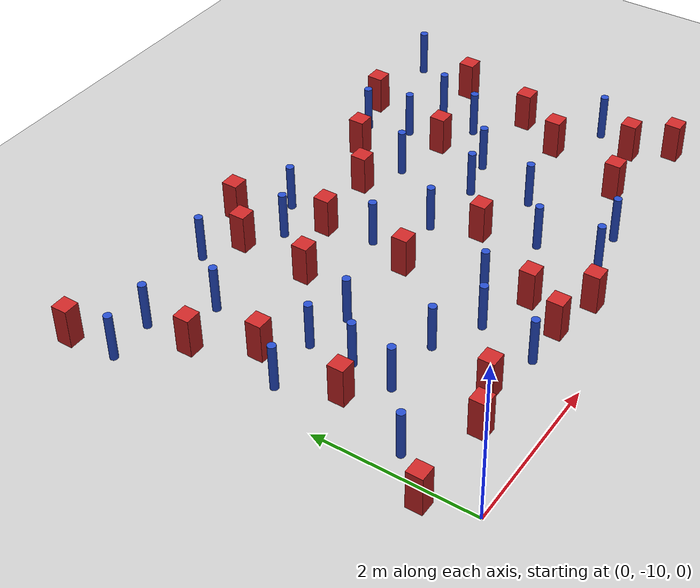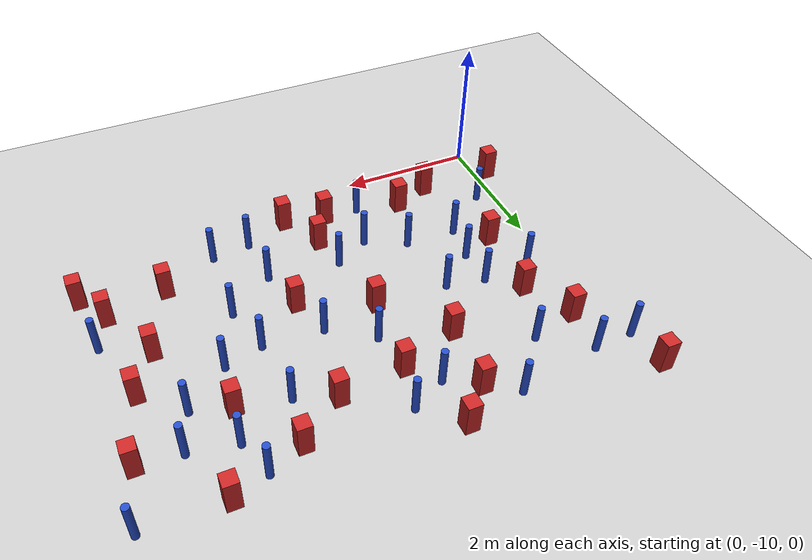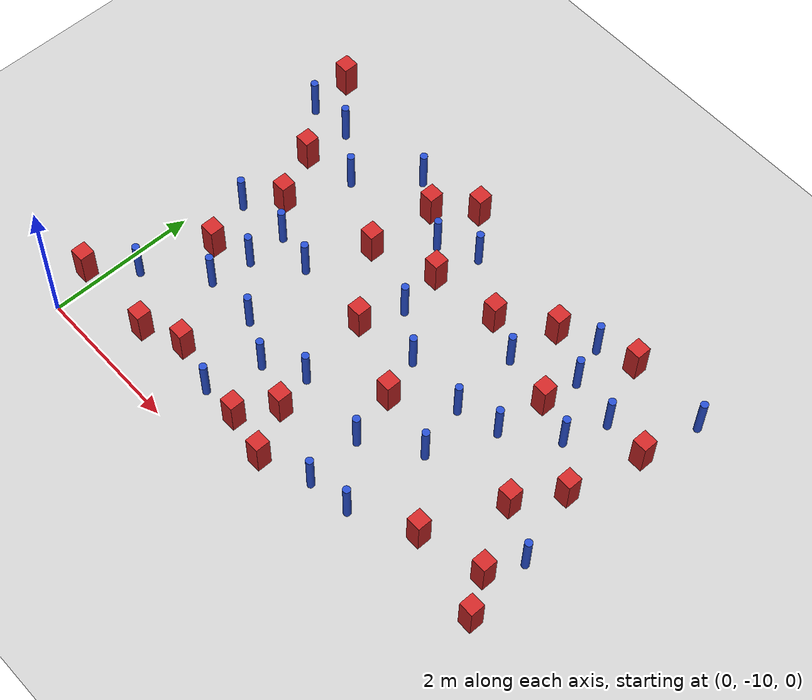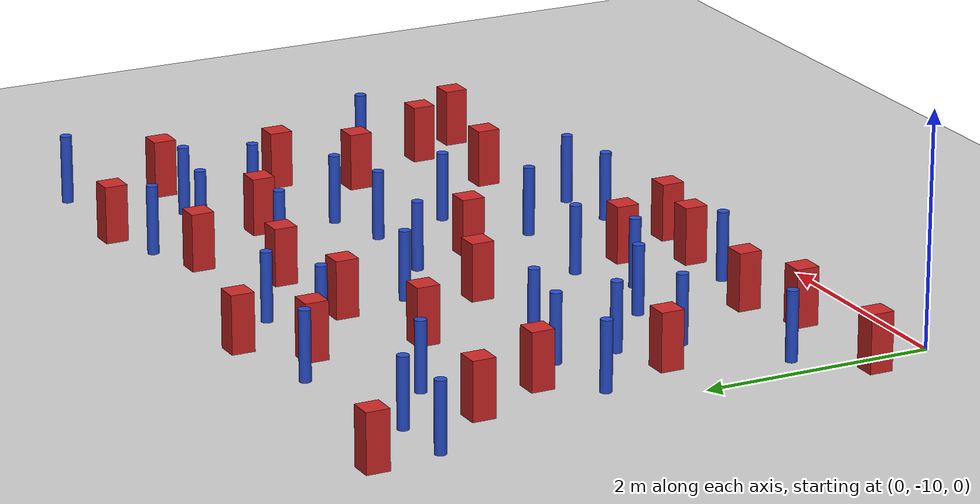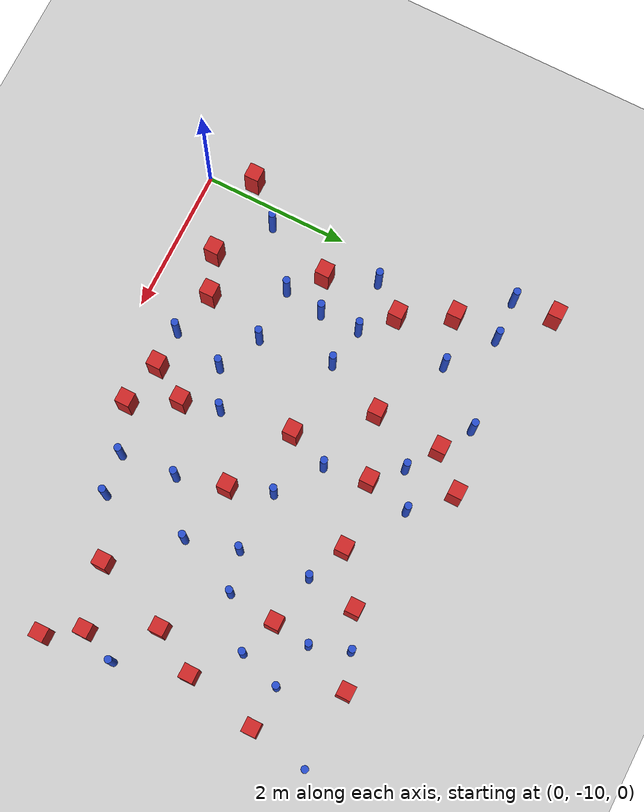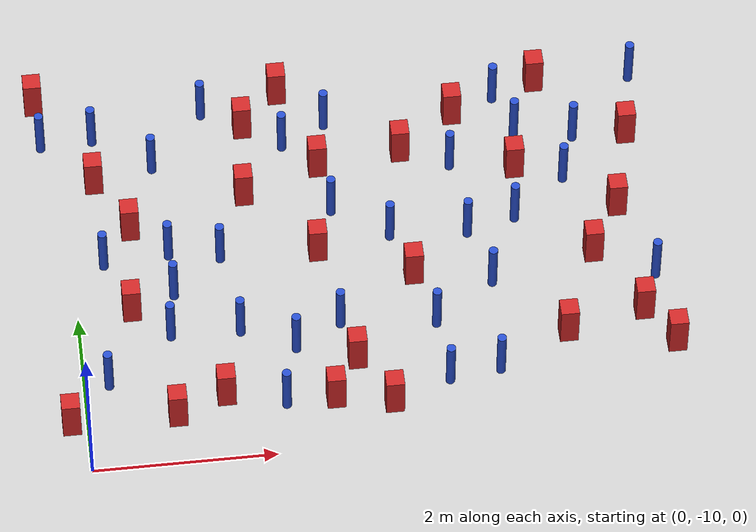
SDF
<sdf version="1.6">
 <world name="default">
  <model name="ground_plane">
   <static>1</static>
   <link name="link">
    <collision name="collision">
     <geometry><plane><normal>0 0 1</normal><size>100 100</size></plane></geometry>
     <surface><friction><ode><mu>100</mu><mu2>50</mu2></ode></friction></surface>
    </collision>
    <visual name="visual">
     <cast_shadows>0</cast_shadows>
     <geometry><plane><normal>0 0 1</normal><size>100 100</size></plane></geometry>
     <material>
      <ambient>1.0 1.0 1.0 1.0</ambient>
      <diffuse>0.8 0.8 0.8 1.0</diffuse>
      <specular>0.01 0.01 0.01 1.000000</specular>
     </material>
    </visual>
   </link>
  </model>
  <model name="pole_obstacle2">
   <static>true</static>
   <pose>3.51476764947 -7.23739863421 -9.47619616065e-06 5.49618799738e-07 2.3631041406e-07 -1.55090534801e-07</pose>
   <link name="link">
    <pose>0 0 0.3 0 -0 0</pose>
    <inertial>
     <mass>1</mass>
     <inertia><ixx>0.145833</ixx><ixy>0</ixy><ixz>0</ixz><iyy>0.145833</iyy><iyz>0</iyz><izz>0.125</izz></inertia>
    </inertial>
    <collision name="collision">
     <geometry><cylinder><radius>0.05</radius><length>.6</length></cylinder></geometry>
    </collision>
    <visual name="visual">
     <geometry><cylinder><radius>0.05</radius><length>.6</length></cylinder></geometry>
     <material>
      <script><name>Gazebo/Blue</name><uri>file://media/materials/scripts/gazebo.material</uri></script>
     </material>
    </visual>
   </link>
  </model>
  <model name="pole_obstacle8">
   <static>true</static>
   <pose>0.990887998173 -8.33564747004 -9.47619616065e-06 5.49618799737e-07 2.36310414031e-07 -1.55090534817e-07</pose>
   <link name="link">
    <pose>0 0 0.3 0 -0 0</pose>
    <inertial>
     <mass>1</mass>
     <inertia><ixx>0.145833</ixx><ixy>0</ixy><ixz>0</ixz><iyy>0.145833</iyy><iyz>0</iyz><izz>0.125</izz></inertia>
    </inertial>
    <collision name="collision">
     <geometry><cylinder><radius>0.05</radius><length>.6</length></cylinder></geometry>
    </collision>
    <visual name="visual">
     <geometry><cylinder><radius>0.05</radius><length>.6</length></cylinder></geometry>
     <material>
      <script><name>Gazebo/Blue</name><uri>file://media/materials/scripts/gazebo.material</uri></script>
     </material>
    </visual>
   </link>
  </model>
  <model name="square_post_obstacle10">
   <static>true</static>
   <pose>1.51281801261 -9.20430132385 -6.11067671241e-07 -5.50515727128e-06 -8.79689657224e-07 2.37013304536e-05</pose>
   <link name="link">
    <pose>0 0 0.25 0 -0 0</pose>
    <inertial>
     <mass>100</mass>
     <inertia>
      <ixx>0.166667</ixx>
      <ixy>0</ixy>
      <ixz>0</ixz>
      <iyy>0.166667</iyy>
      <iyz>0</iyz>
      <izz>0.166667</izz>
     </inertia>
    </inertial>
    <collision name="collision"><geometry><box><size>.2 .2 .5</size></box></geometry></collision>
    <visual name="visual">
     <geometry><box><size>.2 .2 .5</size></box></geometry>
     <material>
      <script><name>Gazebo/Red</name><uri>file://media/materials/scripts/gazebo.material</uri></script>
     </material>
    </visual>
   </link>
  </model>
  <model name="pole_obstacle18">
   <static>true</static>
   <pose>5.0576183305 -5.95667311852 -9.47619616065e-06 5.49618799737e-07 2.36310414037e-07 -1.55090534814e-07</pose>
   <link name="link">
    <pose>0 0 0.3 0 -0 0</pose>
    <inertial>
     <mass>1</mass>
     <inertia><ixx>0.145833</ixx><ixy>0</ixy><ixz>0</ixz><iyy>0.145833</iyy><iyz>0</iyz><izz>0.125</izz></inertia>
    </inertial>
    <collision name="collision">
     <geometry><cylinder><radius>0.05</radius><length>.6</length></cylinder></geometry>
    </collision>
    <visual name="visual">
     <geometry><cylinder><radius>0.05</radius><length>.6</length></cylinder></geometry>
     <material>
      <script><name>Gazebo/Blue</name><uri>file://media/materials/scripts/gazebo.material</uri></script>
     </material>
    </visual>
   </link>
  </model>
  <model name="pole_obstacle19">
   <static>true</static>
   <pose>0.982050966293 -6.01964214024 -9.47619616065e-06 5.49618799737e-07 2.36310414071e-07 -1.55090534793e-07</pose>
   <link name="link">
    <pose>0 0 0.3 0 -0 0</pose>
    <inertial>
     <mass>1</mass>
     <inertia><ixx>0.145833</ixx><ixy>0</ixy><ixz>0</ixz><iyy>0.145833</iyy><iyz>0</iyz><izz>0.125</izz></inertia>
    </inertial>
    <collision name="collision">
     <geometry><cylinder><radius>0.05</radius><length>.6</length></cylinder></geometry>
    </collision>
    <visual name="visual">
     <geometry><cylinder><radius>0.05</radius><length>.6</length></cylinder></geometry>
     <material>
      <script><name>Gazebo/Blue</name><uri>file://media/materials/scripts/gazebo.material</uri></script>
     </material>
    </visual>
   </link>
  </model>
  <model name="square_post_obstacle16">
   <static>true</static>
   <pose>-0.178972206804 -9.41263271013 -6.11067671241e-07 -5.50515727128e-06 -8.79689657224e-07 2.37013304536e-05</pose>
   <link name="link">
    <pose>0 0 0.25 0 -0 0</pose>
    <inertial>
     <mass>100</mass>
     <inertia>
      <ixx>0.166667</ixx>
      <ixy>0</ixy>
      <ixz>0</ixz>
      <iyy>0.166667</iyy>
      <iyz>0</iyz>
      <izz>0.166667</izz>
     </inertia>
    </inertial>
    <collision name="collision"><geometry><box><size>.2 .2 .5</size></box></geometry></collision>
    <visual name="visual">
     <geometry><box><size>.2 .2 .5</size></box></geometry>
     <material>
      <script><name>Gazebo/Red</name><uri>file://media/materials/scripts/gazebo.material</uri></script>
     </material>
    </visual>
   </link>
  </model>
  <model name="pole_obstacle23">
   <static>true</static>
   <pose>2.95160041341 -5.61007444627 -9.47619616065e-06 5.49618799738e-07 2.3631041406e-07 -1.55090534801e-07</pose>
   <link name="link">
    <pose>0 0 0.3 0 -0 0</pose>
    <inertial>
     <mass>1</mass>
     <inertia><ixx>0.145833</ixx><ixy>0</ixy><ixz>0</ixz><iyy>0.145833</iyy><iyz>0</iyz><izz>0.125</izz></inertia>
    </inertial>
    <collision name="collision">
     <geometry><cylinder><radius>0.05</radius><length>.6</length></cylinder></geometry>
    </collision>
    <visual name="visual">
     <geometry><cylinder><radius>0.05</radius><length>.6</length></cylinder></geometry>
     <material>
      <script><name>Gazebo/Blue</name><uri>file://media/materials/scripts/gazebo.material</uri></script>
     </material>
    </visual>
   </link>
  </model>
  <model name="pole_obstacle27">
   <static>true</static>
   <pose>5.52006490459 -6.6473655228 -9.47619616065e-06 5.49618799737e-07 2.36310414037e-07 -1.55090534814e-07</pose>
   <link name="link">
    <pose>0 0 0.3 0 -0 0</pose>
    <inertial>
     <mass>1</mass>
     <inertia><ixx>0.145833</ixx><ixy>0</ixy><ixz>0</ixz><iyy>0.145833</iyy><iyz>0</iyz><izz>0.125</izz></inertia>
    </inertial>
    <collision name="collision">
     <geometry><cylinder><radius>0.05</radius><length>.6</length></cylinder></geometry>
    </collision>
    <visual name="visual">
     <geometry><cylinder><radius>0.05</radius><length>.6</length></cylinder></geometry>
     <material>
      <script><name>Gazebo/Blue</name><uri>file://media/materials/scripts/gazebo.material</uri></script>
     </material>
    </visual>
   </link>
  </model>
  <model name="square_post_obstacle22">
   <static>true</static>
   <pose>3.75171998961 -6.10453477564 -6.11067671241e-07 -5.50515727128e-06 -8.79689657224e-07 2.37013304536e-05</pose>
   <link name="link">
    <pose>0 0 0.25 0 -0 0</pose>
    <inertial>
     <mass>100</mass>
     <inertia>
      <ixx>0.166667</ixx>
      <ixy>0</ixy>
      <ixz>0</ixz>
      <iyy>0.166667</iyy>
      <iyz>0</iyz>
      <izz>0.166667</izz>
     </inertia>
    </inertial>
    <collision name="collision"><geometry><box><size>.2 .2 .5</size></box></geometry></collision>
    <visual name="visual">
     <geometry><box><size>.2 .2 .5</size></box></geometry>
     <material>
      <script><name>Gazebo/Red</name><uri>file://media/materials/scripts/gazebo.material</uri></script>
     </material>
    </visual>
   </link>
  </model>
  <model name="square_post_obstacle23">
   <static>true</static>
   <pose>5.36432635977 -5.27525963786 -6.11067671241e-07 -5.50515727128e-06 -8.79689657224e-07 2.37013304536e-05</pose>
   <link name="link">
    <pose>0 0 0.25 0 -0 0</pose>
    <inertial>
     <mass>100</mass>
     <inertia>
      <ixx>0.166667</ixx>
      <ixy>0</ixy>
      <ixz>0</ixz>
      <iyy>0.166667</iyy>
      <iyz>0</iyz>
      <izz>0.166667</izz>
     </inertia>
    </inertial>
    <collision name="collision"><geometry><box><size>.2 .2 .5</size></box></geometry></collision>
    <visual name="visual">
     <geometry><box><size>.2 .2 .5</size></box></geometry>
     <material>
      <script><name>Gazebo/Red</name><uri>file://media/materials/scripts/gazebo.material</uri></script>
     </material>
    </visual>
   </link>
  </model>
  <model name="pole_obstacle35">
   <static>true</static>
   <pose>4.50597431996 -9.16434247585 -9.47619616065e-06 5.49618799737e-07 2.36310414065e-07 -1.55090534796e-07</pose>
   <link name="link">
    <pose>0 0 0.3 0 -0 0</pose>
    <inertial>
     <mass>1</mass>
     <inertia><ixx>0.145833</ixx><ixy>0</ixy><ixz>0</ixz><iyy>0.145833</iyy><iyz>0</iyz><izz>0.125</izz></inertia>
    </inertial>
    <collision name="collision">
     <geometry><cylinder><radius>0.05</radius><length>.6</length></cylinder></geometry>
    </collision>
    <visual name="visual">
     <geometry><cylinder><radius>0.05</radius><length>.6</length></cylinder></geometry>
     <material>
      <script><name>Gazebo/Blue</name><uri>file://media/materials/scripts/gazebo.material</uri></script>
     </material>
    </visual>
   </link>
  </model>
  <model name="pole_obstacle38">
   <static>true</static>
   <pose>0.348700081009 -5.55899203527 -9.47619616065e-06 5.49618799737e-07 2.36310414065e-07 -1.55090534796e-07</pose>
   <link name="link">
    <pose>0 0 0.3 0 -0 0</pose>
    <inertial>
     <mass>1</mass>
     <inertia><ixx>0.145833</ixx><ixy>0</ixy><ixz>0</ixz><iyy>0.145833</iyy><iyz>0</iyz><izz>0.125</izz></inertia>
    </inertial>
    <collision name="collision">
     <geometry><cylinder><radius>0.05</radius><length>.6</length></cylinder></geometry>
    </collision>
    <visual name="visual">
     <geometry><cylinder><radius>0.05</radius><length>.6</length></cylinder></geometry>
     <material>
      <script><name>Gazebo/Blue</name><uri>file://media/materials/scripts/gazebo.material</uri></script>
     </material>
    </visual>
   </link>
  </model>
  <model name="pole_obstacle40">
   <static>true</static>
   <pose>1.05994457755 -7.23831567833 -9.47619616065e-06 5.49618799737e-07 2.36310414061e-07 -1.550905348e-07</pose>
   <link name="link">
    <pose>0 0 0.3 0 -0 0</pose>
    <inertial>
     <mass>1</mass>
     <inertia><ixx>0.145833</ixx><ixy>0</ixy><ixz>0</ixz><iyy>0.145833</iyy><iyz>0</iyz><izz>0.125</izz></inertia>
    </inertial>
    <collision name="collision">
     <geometry><cylinder><radius>0.05</radius><length>.6</length></cylinder></geometry>
    </collision>
    <visual name="visual">
     <geometry><cylinder><radius>0.05</radius><length>.6</length></cylinder></geometry>
     <material>
      <script><name>Gazebo/Blue</name><uri>file://media/materials/scripts/gazebo.material</uri></script>
     </material>
    </visual>
   </link>
  </model>
  <model name="pole_obstacle44">
   <static>true</static>
   <pose>1.62372913823 -7.33970164119 -9.47619616065e-06 5.49618799737e-07 2.36310414061e-07 -1.550905348e-07</pose>
   <link name="link">
    <pose>0 0 0.3 0 -0 0</pose>
    <inertial>
     <mass>1</mass>
     <inertia><ixx>0.145833</ixx><ixy>0</ixy><ixz>0</ixz><iyy>0.145833</iyy><iyz>0</iyz><izz>0.125</izz></inertia>
    </inertial>
    <collision name="collision">
     <geometry><cylinder><radius>0.05</radius><length>.6</length></cylinder></geometry>
    </collision>
    <visual name="visual">
     <geometry><cylinder><radius>0.05</radius><length>.6</length></cylinder></geometry>
     <material>
      <script><name>Gazebo/Blue</name><uri>file://media/materials/scripts/gazebo.material</uri></script>
     </material>
    </visual>
   </link>
  </model>
  <model name="square_post_obstacle39">
   <static>true</static>
   <pose>6.05712540213 -7.119497328 -6.11067671241e-07 -5.50515727128e-06 -8.79689657224e-07 2.37013304536e-05</pose>
   <link name="link">
    <pose>0 0 0.25 0 -0 0</pose>
    <inertial>
     <mass>100</mass>
     <inertia>
      <ixx>0.166667</ixx>
      <ixy>0</ixy>
      <ixz>0</ixz>
      <iyy>0.166667</iyy>
      <iyz>0</iyz>
      <izz>0.166667</izz>
     </inertia>
    </inertial>
    <collision name="collision"><geometry><box><size>.2 .2 .5</size></box></geometry></collision>
    <visual name="visual">
     <geometry><box><size>.2 .2 .5</size></box></geometry>
     <material>
      <script><name>Gazebo/Red</name><uri>file://media/materials/scripts/gazebo.material</uri></script>
     </material>
    </visual>
   </link>
  </model>
  <model name="square_post_obstacle58">
   <static>true</static>
   <pose>-0.268530518949 -5.00536306171 -6.11067671241e-07 -5.50515727128e-06 -8.79689657224e-07 2.37013304536e-05</pose>
   <link name="link">
    <pose>0 0 0.25 0 -0 0</pose>
    <inertial>
     <mass>100</mass>
     <inertia>
      <ixx>0.166667</ixx>
      <ixy>0</ixy>
      <ixz>0</ixz>
      <iyy>0.166667</iyy>
      <iyz>0</iyz>
      <izz>0.166667</izz>
     </inertia>
    </inertial>
    <collision name="collision"><geometry><box><size>.2 .2 .5</size></box></geometry></collision>
    <visual name="visual">
     <geometry><box><size>.2 .2 .5</size></box></geometry>
     <material>
      <script><name>Gazebo/Red</name><uri>file://media/materials/scripts/gazebo.material</uri></script>
     </material>
    </visual>
   </link>
  </model>
  <model name="pole_obstacle74">
   <static>true</static>
   <pose>1.59459497472 -5.31972881492 -9.47619616065e-06 5.49618799737e-07 2.36310414061e-07 -1.550905348e-07</pose>
   <link name="link">
    <pose>0 0 0.3 0 -0 0</pose>
    <inertial>
     <mass>1</mass>
     <inertia><ixx>0.145833</ixx><ixy>0</ixy><ixz>0</ixz><iyy>0.145833</iyy><iyz>0</iyz><izz>0.125</izz></inertia>
    </inertial>
    <collision name="collision">
     <geometry><cylinder><radius>0.05</radius><length>.6</length></cylinder></geometry>
    </collision>
    <visual name="visual">
     <geometry><cylinder><radius>0.05</radius><length>.6</length></cylinder></geometry>
     <material>
      <script><name>Gazebo/Blue</name><uri>file://media/materials/scripts/gazebo.material</uri></script>
     </material>
    </visual>
   </link>
  </model>
  <model name="square_post_obstacle72">
   <static>true</static>
   <pose>1.96105141353 -6.5248673847 -6.11067671241e-07 -5.50515727128e-06 -8.79689657224e-07 2.37013304536e-05</pose>
   <link name="link">
    <pose>0 0 0.25 0 -0 0</pose>
    <inertial>
     <mass>100</mass>
     <inertia>
      <ixx>0.166667</ixx>
      <ixy>0</ixy>
      <ixz>0</ixz>
      <iyy>0.166667</iyy>
      <iyz>0</iyz>
      <izz>0.166667</izz>
     </inertia>
    </inertial>
    <collision name="collision"><geometry><box><size>.2 .2 .5</size></box></geometry></collision>
    <visual name="visual">
     <geometry><box><size>.2 .2 .5</size></box></geometry>
     <material>
      <script><name>Gazebo/Red</name><uri>file://media/materials/scripts/gazebo.material</uri></script>
     </material>
    </visual>
   </link>
  </model>
  <model name="square_post_obstacle78">
   <static>true</static>
   <pose>6.45244064103 -9.02440388244 -6.11067671241e-07 -5.50515727128e-06 -8.79689657224e-07 2.37013304536e-05</pose>
   <link name="link">
    <pose>0 0 0.25 0 -0 0</pose>
    <inertial>
     <mass>100</mass>
     <inertia>
      <ixx>0.166667</ixx>
      <ixy>0</ixy>
      <ixz>0</ixz>
      <iyy>0.166667</iyy>
      <iyz>0</iyz>
      <izz>0.166667</izz>
     </inertia>
    </inertial>
    <collision name="collision"><geometry><box><size>.2 .2 .5</size></box></geometry></collision>
    <visual name="visual">
     <geometry><box><size>.2 .2 .5</size></box></geometry>
     <material>
      <script><name>Gazebo/Red</name><uri>file://media/materials/scripts/gazebo.material</uri></script>
     </material>
    </visual>
   </link>
  </model>
  <model name="square_post_obstacle81">
   <static>true</static>
   <pose>2.815255583 -6.21769699729 -6.11067671241e-07 -5.50515727128e-06 -8.79689657224e-07 2.37013304536e-05</pose>
   <link name="link">
    <pose>0 0 0.25 0 -0 0</pose>
    <inertial>
     <mass>100</mass>
     <inertia>
      <ixx>0.166667</ixx>
      <ixy>0</ixy>
      <ixz>0</ixz>
      <iyy>0.166667</iyy>
      <iyz>0</iyz>
      <izz>0.166667</izz>
     </inertia>
    </inertial>
    <collision name="collision"><geometry><box><size>.2 .2 .5</size></box></geometry></collision>
    <visual name="visual">
     <geometry><box><size>.2 .2 .5</size></box></geometry>
     <material>
      <script><name>Gazebo/Red</name><uri>file://media/materials/scripts/gazebo.material</uri></script>
     </material>
    </visual>
   </link>
  </model>
  <model name="pole_obstacle90">
   <static>true</static>
   <pose>4.91545230278 -7.13958319275 -9.47619616065e-06 5.49618799737e-07 2.36310414037e-07 -1.55090534814e-07</pose>
   <link name="link">
    <pose>0 0 0.3 0 -0 0</pose>
    <inertial>
     <mass>1</mass>
     <inertia><ixx>0.145833</ixx><ixy>0</ixy><ixz>0</ixz><iyy>0.145833</iyy><iyz>0</iyz><izz>0.125</izz></inertia>
    </inertial>
    <collision name="collision">
     <geometry><cylinder><radius>0.05</radius><length>.6</length></cylinder></geometry>
    </collision>
    <visual name="visual">
     <geometry><cylinder><radius>0.05</radius><length>.6</length></cylinder></geometry>
     <material>
      <script><name>Gazebo/Blue</name><uri>file://media/materials/scripts/gazebo.material</uri></script>
     </material>
    </visual>
   </link>
  </model>
  <model name="pole_obstacle93">
   <static>true</static>
   <pose>4.56123851265 -7.99052916753 -9.47619616065e-06 5.49618799738e-07 2.36310414051e-07 -1.55090534804e-07</pose>
   <link name="link">
    <pose>0 0 0.3 0 -0 0</pose>
    <inertial>
     <mass>1</mass>
     <inertia><ixx>0.145833</ixx><ixy>0</ixy><ixz>0</ixz><iyy>0.145833</iyy><iyz>0</iyz><izz>0.125</izz></inertia>
    </inertial>
    <collision name="collision">
     <geometry><cylinder><radius>0.05</radius><length>.6</length></cylinder></geometry>
    </collision>
    <visual name="visual">
     <geometry><cylinder><radius>0.05</radius><length>.6</length></cylinder></geometry>
     <material>
      <script><name>Gazebo/Blue</name><uri>file://media/materials/scripts/gazebo.material</uri></script>
     </material>
    </visual>
   </link>
  </model>
  <model name="square_post_obstacle86">
   <static>true</static>
   <pose>2.6969976555 -7.38156800943 -6.11067671241e-07 -5.50515727128e-06 -8.79689657224e-07 2.37013304536e-05</pose>
   <link name="link">
    <pose>0 0 0.25 0 -0 0</pose>
    <inertial>
     <mass>100</mass>
     <inertia>
      <ixx>0.166667</ixx>
      <ixy>0</ixy>
      <ixz>0</ixz>
      <iyy>0.166667</iyy>
      <iyz>0</iyz>
      <izz>0.166667</izz>
     </inertia>
    </inertial>
    <collision name="collision"><geometry><box><size>.2 .2 .5</size></box></geometry></collision>
    <visual name="visual">
     <geometry><box><size>.2 .2 .5</size></box></geometry>
     <material>
      <script><name>Gazebo/Red</name><uri>file://media/materials/scripts/gazebo.material</uri></script>
     </material>
    </visual>
   </link>
  </model>
  <model name="square_post_obstacle101">
   <static>true</static>
   <pose>6.15844715658 -8.5576198427 -6.11067671241e-07 -5.50515727128e-06 -8.79689657224e-07 2.37013304536e-05</pose>
   <link name="link">
    <pose>0 0 0.25 0 -0 0</pose>
    <inertial>
     <mass>100</mass>
     <inertia>
      <ixx>0.166667</ixx>
      <ixy>0</ixy>
      <ixz>0</ixz>
      <iyy>0.166667</iyy>
      <iyz>0</iyz>
      <izz>0.166667</izz>
     </inertia>
    </inertial>
    <collision name="collision"><geometry><box><size>.2 .2 .5</size></box></geometry></collision>
    <visual name="visual">
     <geometry><box><size>.2 .2 .5</size></box></geometry>
     <material>
      <script><name>Gazebo/Red</name><uri>file://media/materials/scripts/gazebo.material</uri></script>
     </material>
    </visual>
   </link>
  </model>
  <model name="square_post_obstacle103">
   <static>true</static>
   <pose>5.29578585495 -8.7616574611 -6.11067671241e-07 -5.50515727128e-06 -8.79689657224e-07 2.37013304536e-05</pose>
   <link name="link">
    <pose>0 0 0.25 0 -0 0</pose>
    <inertial>
     <mass>100</mass>
     <inertia>
      <ixx>0.166667</ixx>
      <ixy>0</ixy>
      <ixz>0</ixz>
      <iyy>0.166667</iyy>
      <iyz>0</iyz>
      <izz>0.166667</izz>
     </inertia>
    </inertial>
    <collision name="collision"><geometry><box><size>.2 .2 .5</size></box></geometry></collision>
    <visual name="visual">
     <geometry><box><size>.2 .2 .5</size></box></geometry>
     <material>
      <script><name>Gazebo/Red</name><uri>file://media/materials/scripts/gazebo.material</uri></script>
     </material>
    </visual>
   </link>
  </model>
  <model name="square_post_obstacle105">
   <static>true</static>
   <pose>0.969729657711 -9.42117963689 -6.11067671241e-07 -5.50515727128e-06 -8.79689657224e-07 2.37013304536e-05</pose>
   <link name="link">
    <pose>0 0 0.25 0 -0 0</pose>
    <inertial>
     <mass>100</mass>
     <inertia>
      <ixx>0.166667</ixx>
      <ixy>0</ixy>
      <ixz>0</ixz>
      <iyy>0.166667</iyy>
      <iyz>0</iyz>
      <izz>0.166667</izz>
     </inertia>
    </inertial>
    <collision name="collision"><geometry><box><size>.2 .2 .5</size></box></geometry></collision>
    <visual name="visual">
     <geometry><box><size>.2 .2 .5</size></box></geometry>
     <material>
      <script><name>Gazebo/Red</name><uri>file://media/materials/scripts/gazebo.material</uri></script>
     </material>
    </visual>
   </link>
  </model>
  <model name="pole_obstacle111">
   <static>true</static>
   <pose>1.0714037883 -7.78708603665 -9.47619616065e-06 5.49618799737e-07 2.36310414061e-07 -1.550905348e-07</pose>
   <link name="link">
    <pose>0 0 0.3 0 -0 0</pose>
    <inertial>
     <mass>1</mass>
     <inertia><ixx>0.145833</ixx><ixy>0</ixy><ixz>0</ixz><iyy>0.145833</iyy><iyz>0</iyz><izz>0.125</izz></inertia>
    </inertial>
    <collision name="collision">
     <geometry><cylinder><radius>0.05</radius><length>.6</length></cylinder></geometry>
    </collision>
    <visual name="visual">
     <geometry><cylinder><radius>0.05</radius><length>.6</length></cylinder></geometry>
     <material>
      <script><name>Gazebo/Blue</name><uri>file://media/materials/scripts/gazebo.material</uri></script>
     </material>
    </visual>
   </link>
  </model>
  <model name="square_post_obstacle109">
   <static>true</static>
   <pose>3.70997079551 -7.80896299145 -6.11067671241e-07 -5.50515727128e-06 -8.79689657224e-07 2.37013304536e-05</pose>
   <link name="link">
    <pose>0 0 0.25 0 -0 0</pose>
    <inertial>
     <mass>100</mass>
     <inertia>
      <ixx>0.166667</ixx>
      <ixy>0</ixy>
      <ixz>0</ixz>
      <iyy>0.166667</iyy>
      <iyz>0</iyz>
      <izz>0.166667</izz>
     </inertia>
    </inertial>
    <collision name="collision"><geometry><box><size>.2 .2 .5</size></box></geometry></collision>
    <visual name="visual">
     <geometry><box><size>.2 .2 .5</size></box></geometry>
     <material>
      <script><name>Gazebo/Red</name><uri>file://media/materials/scripts/gazebo.material</uri></script>
     </material>
    </visual>
   </link>
  </model>
  <model name="pole_obstacle116">
   <static>true</static>
   <pose>6.44722562948 -5.30359368477 -9.47619616065e-06 5.49618799737e-07 2.36310414037e-07 -1.55090534814e-07</pose>
   <link name="link">
    <pose>0 0 0.3 0 -0 0</pose>
    <inertial>
     <mass>1</mass>
     <inertia><ixx>0.145833</ixx><ixy>0</ixy><ixz>0</ixz><iyy>0.145833</iyy><iyz>0</iyz><izz>0.125</izz></inertia>
    </inertial>
    <collision name="collision">
     <geometry><cylinder><radius>0.05</radius><length>.6</length></cylinder></geometry>
    </collision>
    <visual name="visual">
     <geometry><cylinder><radius>0.05</radius><length>.6</length></cylinder></geometry>
     <material>
      <script><name>Gazebo/Blue</name><uri>file://media/materials/scripts/gazebo.material</uri></script>
     </material>
    </visual>
   </link>
  </model>
  <model name="square_post_obstacle120">
   <static>true</static>
   <pose>4.38816185245 -5.64271755468 -6.11067671241e-07 -5.50515727128e-06 -8.79689657224e-07 2.37013304536e-05</pose>
   <link name="link">
    <pose>0 0 0.25 0 -0 0</pose>
    <inertial>
     <mass>100</mass>
     <inertia>
      <ixx>0.166667</ixx>
      <ixy>0</ixy>
      <ixz>0</ixz>
      <iyy>0.166667</iyy>
      <iyz>0</iyz>
      <izz>0.166667</izz>
     </inertia>
    </inertial>
    <collision name="collision"><geometry><box><size>.2 .2 .5</size></box></geometry></collision>
    <visual name="visual">
     <geometry><box><size>.2 .2 .5</size></box></geometry>
     <material>
      <script><name>Gazebo/Red</name><uri>file://media/materials/scripts/gazebo.material</uri></script>
     </material>
    </visual>
   </link>
  </model>
  <model name="pole_obstacle129">
   <static>true</static>
   <pose>6.35849229042 -8.07526511164 -9.47619616065e-06 5.49618799737e-07 2.36310414065e-07 -1.55090534796e-07</pose>
   <link name="link">
    <pose>0 0 0.3 0 -0 0</pose>
    <inertial>
     <mass>1</mass>
     <inertia><ixx>0.145833</ixx><ixy>0</ixy><ixz>0</ixz><iyy>0.145833</iyy><iyz>0</iyz><izz>0.125</izz></inertia>
    </inertial>
    <collision name="collision">
     <geometry><cylinder><radius>0.05</radius><length>.6</length></cylinder></geometry>
    </collision>
    <visual name="visual">
     <geometry><cylinder><radius>0.05</radius><length>.6</length></cylinder></geometry>
     <material>
      <script><name>Gazebo/Blue</name><uri>file://media/materials/scripts/gazebo.material</uri></script>
     </material>
    </visual>
   </link>
  </model>
  <model name="pole_obstacle130">
   <static>true</static>
   <pose>3.88802008163 -8.47361931888 -9.4761961606e-06 5.49618799729e-07 2.36310414e-07 -1.55090534824e-07</pose>
   <link name="link">
    <pose>0 0 0.3 0 -0 0</pose>
    <inertial>
     <mass>1</mass>
     <inertia><ixx>0.145833</ixx><ixy>0</ixy><ixz>0</ixz><iyy>0.145833</iyy><iyz>0</iyz><izz>0.125</izz></inertia>
    </inertial>
    <collision name="collision">
     <geometry><cylinder><radius>0.05</radius><length>.6</length></cylinder></geometry>
    </collision>
    <visual name="visual">
     <geometry><cylinder><radius>0.05</radius><length>.6</length></cylinder></geometry>
     <material>
      <script><name>Gazebo/Blue</name><uri>file://media/materials/scripts/gazebo.material</uri></script>
     </material>
    </visual>
   </link>
  </model>
  <model name="square_post_obstacle132">
   <static>true</static>
   <pose>3.30552028633 -9.49163800574 -6.11067671241e-07 -5.50515727128e-06 -8.79689657224e-07 2.37013304536e-05</pose>
   <link name="link">
    <pose>0 0 0.25 0 -0 0</pose>
    <inertial>
     <mass>100</mass>
     <inertia>
      <ixx>0.166667</ixx>
      <ixy>0</ixy>
      <ixz>0</ixz>
      <iyy>0.166667</iyy>
      <iyz>0</iyz>
      <izz>0.166667</izz>
     </inertia>
    </inertial>
    <collision name="collision"><geometry><box><size>.2 .2 .5</size></box></geometry></collision>
    <visual name="visual">
     <geometry><box><size>.2 .2 .5</size></box></geometry>
     <material>
      <script><name>Gazebo/Red</name><uri>file://media/materials/scripts/gazebo.material</uri></script>
     </material>
    </visual>
   </link>
  </model>
  <model name="pole_obstacle135">
   <static>true</static>
   <pose>2.3315578804 -8.64383164102 -9.4761961606e-06 5.49618799729e-07 2.36310414e-07 -1.55090534824e-07</pose>
   <link name="link">
    <pose>0 0 0.3 0 -0 0</pose>
    <inertial>
     <mass>1</mass>
     <inertia><ixx>0.145833</ixx><ixy>0</ixy><ixz>0</ixz><iyy>0.145833</iyy><iyz>0</iyz><izz>0.125</izz></inertia>
    </inertial>
    <collision name="collision">
     <geometry><cylinder><radius>0.05</radius><length>.6</length></cylinder></geometry>
    </collision>
    <visual name="visual">
     <geometry><cylinder><radius>0.05</radius><length>.6</length></cylinder></geometry>
     <material>
      <script><name>Gazebo/Blue</name><uri>file://media/materials/scripts/gazebo.material</uri></script>
     </material>
    </visual>
   </link>
  </model>
  <model name="pole_obstacle138">
   <static>true</static>
   <pose>2.15323896476 -9.36881229132 -9.4761961606e-06 5.49618799729e-07 2.36310414e-07 -1.55090534824e-07</pose>
   <link name="link">
    <pose>0 0 0.3 0 -0 0</pose>
    <inertial>
     <mass>1</mass>
     <inertia><ixx>0.145833</ixx><ixy>0</ixy><ixz>0</ixz><iyy>0.145833</iyy><iyz>0</iyz><izz>0.125</izz></inertia>
    </inertial>
    <collision name="collision">
     <geometry><cylinder><radius>0.05</radius><length>.6</length></cylinder></geometry>
    </collision>
    <visual name="visual">
     <geometry><cylinder><radius>0.05</radius><length>.6</length></cylinder></geometry>
     <material>
      <script><name>Gazebo/Blue</name><uri>file://media/materials/scripts/gazebo.material</uri></script>
     </material>
    </visual>
   </link>
  </model>
  <model name="square_post_obstacle135">
   <static>true</static>
   <pose>6.2919391748 -6.12014643631 -6.11067671241e-07 -5.50515727128e-06 -8.79689657224e-07 2.37013304536e-05</pose>
   <link name="link">
    <pose>0 0 0.25 0 -0 0</pose>
    <inertial>
     <mass>100</mass>
     <inertia>
      <ixx>0.166667</ixx>
      <ixy>0</ixy>
      <ixz>0</ixz>
      <iyy>0.166667</iyy>
      <iyz>0</iyz>
      <izz>0.166667</izz>
     </inertia>
    </inertial>
    <collision name="collision"><geometry><box><size>.2 .2 .5</size></box></geometry></collision>
    <visual name="visual">
     <geometry><box><size>.2 .2 .5</size></box></geometry>
     <material>
      <script><name>Gazebo/Red</name><uri>file://media/materials/scripts/gazebo.material</uri></script>
     </material>
    </visual>
   </link>
  </model>
  <model name="square_post_obstacle138">
   <static>true</static>
   <pose>2.03317076697 -5.5837066779 -6.11067671241e-07 -5.50515727128e-06 -8.79689657224e-07 2.37013304536e-05</pose>
   <link name="link">
    <pose>0 0 0.25 0 -0 0</pose>
    <inertial>
     <mass>100</mass>
     <inertia>
      <ixx>0.166667</ixx>
      <ixy>0</ixy>
      <ixz>0</ixz>
      <iyy>0.166667</iyy>
      <iyz>0</iyz>
      <izz>0.166667</izz>
     </inertia>
    </inertial>
    <collision name="collision"><geometry><box><size>.2 .2 .5</size></box></geometry></collision>
    <visual name="visual">
     <geometry><box><size>.2 .2 .5</size></box></geometry>
     <material>
      <script><name>Gazebo/Red</name><uri>file://media/materials/scripts/gazebo.material</uri></script>
     </material>
    </visual>
   </link>
  </model>
  <model name="pole_obstacle147">
   <static>true</static>
   <pose>4.28767877302 -6.33496178721 -9.47619616065e-06 5.49618799737e-07 2.36310414037e-07 -1.55090534814e-07</pose>
   <link name="link">
    <pose>0 0 0.3 0 -0 0</pose>
    <inertial>
     <mass>1</mass>
     <inertia><ixx>0.145833</ixx><ixy>0</ixy><ixz>0</ixz><iyy>0.145833</iyy><iyz>0</iyz><izz>0.125</izz></inertia>
    </inertial>
    <collision name="collision">
     <geometry><cylinder><radius>0.05</radius><length>.6</length></cylinder></geometry>
    </collision>
    <visual name="visual">
     <geometry><cylinder><radius>0.05</radius><length>.6</length></cylinder></geometry>
     <material>
      <script><name>Gazebo/Blue</name><uri>file://media/materials/scripts/gazebo.material</uri></script>
     </material>
    </visual>
   </link>
  </model>
  <model name="pole_obstacle149">
   <static>true</static>
   <pose>2.90586198044 -6.82374583492 -9.47619616065e-06 5.49618799738e-07 2.3631041406e-07 -1.55090534801e-07</pose>
   <link name="link">
    <pose>0 0 0.3 0 -0 0</pose>
    <inertial>
     <mass>1</mass>
     <inertia><ixx>0.145833</ixx><ixy>0</ixy><ixz>0</ixz><iyy>0.145833</iyy><iyz>0</iyz><izz>0.125</izz></inertia>
    </inertial>
    <collision name="collision">
     <geometry><cylinder><radius>0.05</radius><length>.6</length></cylinder></geometry>
    </collision>
    <visual name="visual">
     <geometry><cylinder><radius>0.05</radius><length>.6</length></cylinder></geometry>
     <material>
      <script><name>Gazebo/Blue</name><uri>file://media/materials/scripts/gazebo.material</uri></script>
     </material>
    </visual>
   </link>
  </model>
  <model name="square_post_obstacle145">
   <static>true</static>
   <pose>5.71186835403 -7.72280584899 -6.11067671241e-07 -5.50515727128e-06 -8.79689657224e-07 2.37013304536e-05</pose>
   <link name="link">
    <pose>0 0 0.25 0 -0 0</pose>
    <inertial>
     <mass>100</mass>
     <inertia>
      <ixx>0.166667</ixx>
      <ixy>0</ixy>
      <ixz>0</ixz>
      <iyy>0.166667</iyy>
      <iyz>0</iyz>
      <izz>0.166667</izz>
     </inertia>
    </inertial>
    <collision name="collision"><geometry><box><size>.2 .2 .5</size></box></geometry></collision>
    <visual name="visual">
     <geometry><box><size>.2 .2 .5</size></box></geometry>
     <material>
      <script><name>Gazebo/Red</name><uri>file://media/materials/scripts/gazebo.material</uri></script>
     </material>
    </visual>
   </link>
  </model>
  <model name="square_post_obstacle147">
   <static>true</static>
   <pose>2.97119833612 -8.87535005363 -6.11067671241e-07 -5.50515727128e-06 -8.79689657224e-07 2.37013304536e-05</pose>
   <link name="link">
    <pose>0 0 0.25 0 -0 0</pose>
    <inertial>
     <mass>100</mass>
     <inertia>
      <ixx>0.166667</ixx>
      <ixy>0</ixy>
      <ixz>0</ixz>
      <iyy>0.166667</iyy>
      <iyz>0</iyz>
      <izz>0.166667</izz>
     </inertia>
    </inertial>
    <collision name="collision"><geometry><box><size>.2 .2 .5</size></box></geometry></collision>
    <visual name="visual">
     <geometry><box><size>.2 .2 .5</size></box></geometry>
     <material>
      <script><name>Gazebo/Red</name><uri>file://media/materials/scripts/gazebo.material</uri></script>
     </material>
    </visual>
   </link>
  </model>
  <model name="pole_obstacle155">
   <static>true</static>
   <pose>5.70410664149 -6.08150735887 -9.47619616065e-06 5.49618799737e-07 2.36310414037e-07 -1.55090534814e-07</pose>
   <link name="link">
    <pose>0 0 0.3 0 -0 0</pose>
    <inertial>
     <mass>1</mass>
     <inertia><ixx>0.145833</ixx><ixy>0</ixy><ixz>0</ixz><iyy>0.145833</iyy><iyz>0</iyz><izz>0.125</izz></inertia>
    </inertial>
    <collision name="collision">
     <geometry><cylinder><radius>0.05</radius><length>.6</length></cylinder></geometry>
    </collision>
    <visual name="visual">
     <geometry><cylinder><radius>0.05</radius><length>.6</length></cylinder></geometry>
     <material>
      <script><name>Gazebo/Blue</name><uri>file://media/materials/scripts/gazebo.material</uri></script>
     </material>
    </visual>
   </link>
  </model>
  <model name="pole_obstacle156">
   <static>true</static>
   <pose>2.45561480394 -5.86358945355 -9.47619616065e-06 5.49618799738e-07 2.3631041406e-07 -1.55090534801e-07</pose>
   <link name="link">
    <pose>0 0 0.3 0 -0 0</pose>
    <inertial>
     <mass>1</mass>
     <inertia><ixx>0.145833</ixx><ixy>0</ixy><ixz>0</ixz><iyy>0.145833</iyy><iyz>0</iyz><izz>0.125</izz></inertia>
    </inertial>
    <collision name="collision">
     <geometry><cylinder><radius>0.05</radius><length>.6</length></cylinder></geometry>
    </collision>
    <visual name="visual">
     <geometry><cylinder><radius>0.05</radius><length>.6</length></cylinder></geometry>
     <material>
      <script><name>Gazebo/Blue</name><uri>file://media/materials/scripts/gazebo.material</uri></script>
     </material>
    </visual>
   </link>
  </model>
  <model name="pole_obstacle161">
   <static>true</static>
   <pose>4.87932844049 -5.43944590183 -9.47619616065e-06 5.49618799737e-07 2.36310414037e-07 -1.55090534814e-07</pose>
   <link name="link">
    <pose>0 0 0.3 0 -0 0</pose>
    <inertial>
     <mass>1</mass>
     <inertia><ixx>0.145833</ixx><ixy>0</ixy><ixz>0</ixz><iyy>0.145833</iyy><iyz>0</iyz><izz>0.125</izz></inertia>
    </inertial>
    <collision name="collision">
     <geometry><cylinder><radius>0.05</radius><length>.6</length></cylinder></geometry>
    </collision>
    <visual name="visual">
     <geometry><cylinder><radius>0.05</radius><length>.6</length></cylinder></geometry>
     <material>
      <script><name>Gazebo/Blue</name><uri>file://media/materials/scripts/gazebo.material</uri></script>
     </material>
    </visual>
   </link>
  </model>
  <model name="pole_obstacle165">
   <static>true</static>
   <pose>2.84376444887 -8.36501660242 -9.4761961606e-06 5.49618799729e-07 2.36310414e-07 -1.55090534824e-07</pose>
   <link name="link">
    <pose>0 0 0.3 0 -0 0</pose>
    <inertial>
     <mass>1</mass>
     <inertia><ixx>0.145833</ixx><ixy>0</ixy><ixz>0</ixz><iyy>0.145833</iyy><iyz>0</iyz><izz>0.125</izz></inertia>
    </inertial>
    <collision name="collision">
     <geometry><cylinder><radius>0.05</radius><length>.6</length></cylinder></geometry>
    </collision>
    <visual name="visual">
     <geometry><cylinder><radius>0.05</radius><length>.6</length></cylinder></geometry>
     <material>
      <script><name>Gazebo/Blue</name><uri>file://media/materials/scripts/gazebo.material</uri></script>
     </material>
    </visual>
   </link>
  </model>
  <model name="pole_obstacle167">
   <static>true</static>
   <pose>3.94504573 -9.24037190326 -9.4761961606e-06 5.49618799729e-07 2.36310414e-07 -1.55090534824e-07</pose>
   <link name="link">
    <pose>0 0 0.3 0 -0 0</pose>
    <inertial>
     <mass>1</mass>
     <inertia><ixx>0.145833</ixx><ixy>0</ixy><ixz>0</ixz><iyy>0.145833</iyy><iyz>0</iyz><izz>0.125</izz></inertia>
    </inertial>
    <collision name="collision">
     <geometry><cylinder><radius>0.05</radius><length>.6</length></cylinder></geometry>
    </collision>
    <visual name="visual">
     <geometry><cylinder><radius>0.05</radius><length>.6</length></cylinder></geometry>
     <material>
      <script><name>Gazebo/Blue</name><uri>file://media/materials/scripts/gazebo.material</uri></script>
     </material>
    </visual>
   </link>
  </model>
  <model name="pole_obstacle172">
   <static>true</static>
   <pose>-0.227275097103 -5.58915302957 -9.47619616065e-06 5.49618799737e-07 2.36310414064e-07 -1.55090534799e-07</pose>
   <link name="link">
    <pose>0 0 0.3 0 -0 0</pose>
    <inertial>
     <mass>1</mass>
     <inertia><ixx>0.145833</ixx><ixy>0</ixy><ixz>0</ixz><iyy>0.145833</iyy><iyz>0</iyz><izz>0.125</izz></inertia>
    </inertial>
    <collision name="collision">
     <geometry><cylinder><radius>0.05</radius><length>.6</length></cylinder></geometry>
    </collision>
    <visual name="visual">
     <geometry><cylinder><radius>0.05</radius><length>.6</length></cylinder></geometry>
     <material>
      <script><name>Gazebo/Blue</name><uri>file://media/materials/scripts/gazebo.material</uri></script>
     </material>
    </visual>
   </link>
  </model>
  <model name="square_post_obstacle177">
   <static>true</static>
   <pose>0.593115067762 -7.97399194552 -6.11067671241e-07 -5.50515727128e-06 -8.79689657224e-07 2.37013304536e-05</pose>
   <link name="link">
    <pose>0 0 0.25 0 -0 0</pose>
    <inertial>
     <mass>100</mass>
     <inertia>
      <ixx>0.166667</ixx>
      <ixy>0</ixy>
      <ixz>0</ixz>
      <iyy>0.166667</iyy>
      <iyz>0</iyz>
      <izz>0.166667</izz>
     </inertia>
    </inertial>
    <collision name="collision"><geometry><box><size>.2 .2 .5</size></box></geometry></collision>
    <visual name="visual">
     <geometry><box><size>.2 .2 .5</size></box></geometry>
     <material>
      <script><name>Gazebo/Red</name><uri>file://media/materials/scripts/gazebo.material</uri></script>
     </material>
    </visual>
   </link>
  </model>
  <model name="square_post_obstacle179">
   <static>true</static>
   <pose>2.46505667644 -5.14120114681 -6.11067671241e-07 -5.50515727128e-06 -8.79689657224e-07 2.37013304536e-05</pose>
   <link name="link">
    <pose>0 0 0.25 0 -0 0</pose>
    <inertial>
     <mass>100</mass>
     <inertia>
      <ixx>0.166667</ixx>
      <ixy>0</ixy>
      <ixz>0</ixz>
      <iyy>0.166667</iyy>
      <iyz>0</iyz>
      <izz>0.166667</izz>
     </inertia>
    </inertial>
    <collision name="collision"><geometry><box><size>.2 .2 .5</size></box></geometry></collision>
    <visual name="visual">
     <geometry><box><size>.2 .2 .5</size></box></geometry>
     <material>
      <script><name>Gazebo/Red</name><uri>file://media/materials/scripts/gazebo.material</uri></script>
     </material>
    </visual>
   </link>
  </model>
  <model name="square_post_obstacle188">
   <static>true</static>
   <pose>0.320203413445 -6.1834595988 -6.11067671241e-07 -5.50515727128e-06 -8.79689657224e-07 2.37013304536e-05</pose>
   <link name="link">
    <pose>0 0 0.25 0 -0 0</pose>
    <inertial>
     <mass>100</mass>
     <inertia>
      <ixx>0.166667</ixx>
      <ixy>0</ixy>
      <ixz>0</ixz>
      <iyy>0.166667</iyy>
      <iyz>0</iyz>
      <izz>0.166667</izz>
     </inertia>
    </inertial>
    <collision name="collision"><geometry><box><size>.2 .2 .5</size></box></geometry></collision>
    <visual name="visual">
     <geometry><box><size>.2 .2 .5</size></box></geometry>
     <material>
      <script><name>Gazebo/Red</name><uri>file://media/materials/scripts/gazebo.material</uri></script>
     </material>
    </visual>
   </link>
  </model>
  <model name="square_post_obstacle197">
   <static>true</static>
   <pose>2.68564063651 -9.36686435668 -6.11067671241e-07 -5.50515727128e-06 -8.79689657224e-07 2.37013304536e-05</pose>
   <link name="link">
    <pose>0 0 0.25 0 -0 0</pose>
    <inertial>
     <mass>100</mass>
     <inertia>
      <ixx>0.166667</ixx>
      <ixy>0</ixy>
      <ixz>0</ixz>
      <iyy>0.166667</iyy>
      <iyz>0</iyz>
      <izz>0.166667</izz>
     </inertia>
    </inertial>
    <collision name="collision"><geometry><box><size>.2 .2 .5</size></box></geometry></collision>
    <visual name="visual">
     <geometry><box><size>.2 .2 .5</size></box></geometry>
     <material>
      <script><name>Gazebo/Red</name><uri>file://media/materials/scripts/gazebo.material</uri></script>
     </material>
    </visual>
   </link>
  </model>
  <model name="pole_obstacle203">
   <static>true</static>
   <pose>0.340406202755 -7.30038793369 -9.47619616065e-06 5.49618799737e-07 2.36310414065e-07 -1.55090534796e-07</pose>
   <link name="link">
    <pose>0 0 0.3 0 -0 0</pose>
    <inertial>
     <mass>1</mass>
     <inertia><ixx>0.145833</ixx><ixy>0</ixy><ixz>0</ixz><iyy>0.145833</iyy><iyz>0</iyz><izz>0.125</izz></inertia>
    </inertial>
    <collision name="collision">
     <geometry><cylinder><radius>0.05</radius><length>.6</length></cylinder></geometry>
    </collision>
    <visual name="visual">
     <geometry><cylinder><radius>0.05</radius><length>.6</length></cylinder></geometry>
     <material>
      <script><name>Gazebo/Blue</name><uri>file://media/materials/scripts/gazebo.material</uri></script>
     </material>
    </visual>
   </link>
  </model>
  <model name="pole_obstacle204">
   <static>true</static>
   <pose>0.266671490901 -8.91768383016 -9.47619616065e-06 5.49618799737e-07 2.36310414028e-07 -1.5509053482e-07</pose>
   <link name="link">
    <pose>0 0 0.3 0 -0 0</pose>
    <inertial>
     <mass>1</mass>
     <inertia><ixx>0.145833</ixx><ixy>0</ixy><ixz>0</ixz><iyy>0.145833</iyy><iyz>0</iyz><izz>0.125</izz></inertia>
    </inertial>
    <collision name="collision">
     <geometry><cylinder><radius>0.05</radius><length>.6</length></cylinder></geometry>
    </collision>
    <visual name="visual">
     <geometry><cylinder><radius>0.05</radius><length>.6</length></cylinder></geometry>
     <material>
      <script><name>Gazebo/Blue</name><uri>file://media/materials/scripts/gazebo.material</uri></script>
     </material>
    </visual>
   </link>
  </model>
  <model name="pole_obstacle205">
   <static>true</static>
   <pose>1.74987219881 -8.35581424027 -9.47619616065e-06 5.49618799737e-07 2.36310414046e-07 -1.55090534809e-07</pose>
   <link name="link">
    <pose>0 0 0.3 0 -0 0</pose>
    <inertial>
     <mass>1</mass>
     <inertia><ixx>0.145833</ixx><ixy>0</ixy><ixz>0</ixz><iyy>0.145833</iyy><iyz>0</iyz><izz>0.125</izz></inertia>
    </inertial>
    <collision name="collision">
     <geometry><cylinder><radius>0.05</radius><length>.6</length></cylinder></geometry>
    </collision>
    <visual name="visual">
     <geometry><cylinder><radius>0.05</radius><length>.6</length></cylinder></geometry>
     <material>
      <script><name>Gazebo/Blue</name><uri>file://media/materials/scripts/gazebo.material</uri></script>
     </material>
    </visual>
   </link>
  </model>
  <model name="pole_obstacle206">
   <static>true</static>
   <pose>4.37142248866 -7.28950157833 -9.47619616065e-06 5.49618799737e-07 2.36310414037e-07 -1.55090534814e-07</pose>
   <link name="link">
    <pose>0 0 0.3 0 -0 0</pose>
    <inertial>
     <mass>1</mass>
     <inertia><ixx>0.145833</ixx><ixy>0</ixy><ixz>0</ixz><iyy>0.145833</iyy><iyz>0</iyz><izz>0.125</izz></inertia>
    </inertial>
    <collision name="collision">
     <geometry><cylinder><radius>0.05</radius><length>.6</length></cylinder></geometry>
    </collision>
    <visual name="visual">
     <geometry><cylinder><radius>0.05</radius><length>.6</length></cylinder></geometry>
     <material>
      <script><name>Gazebo/Blue</name><uri>file://media/materials/scripts/gazebo.material</uri></script>
     </material>
    </visual>
   </link>
  </model>
  <model name="square_post_obstacle217">
   <static>true</static>
   <pose>4.9922799502 -6.46837002312 -6.11067671241e-07 -5.50515727128e-06 -8.79689657224e-07 2.37013304536e-05</pose>
   <link name="link">
    <pose>0 0 0.25 0 -0 0</pose>
    <inertial>
     <mass>100</mass>
     <inertia>
      <ixx>0.166667</ixx>
      <ixy>0</ixy>
      <ixz>0</ixz>
      <iyy>0.166667</iyy>
      <iyz>0</iyz>
      <izz>0.166667</izz>
     </inertia>
    </inertial>
    <collision name="collision"><geometry><box><size>.2 .2 .5</size></box></geometry></collision>
    <visual name="visual">
     <geometry><box><size>.2 .2 .5</size></box></geometry>
     <material>
      <script><name>Gazebo/Red</name><uri>file://media/materials/scripts/gazebo.material</uri></script>
     </material>
    </visual>
   </link>
  </model>
  <model name="square_post_obstacle230">
   <static>true</static>
   <pose>0.665887950203 -6.87060002312 -6.11067671241e-07 -5.50515727128e-06 -8.79689657224e-07 2.37013304536e-05</pose>
   <link name="link">
    <pose>0 0 0.25 0 -0 0</pose>
    <inertial>
     <mass>100</mass>
     <inertia>
      <ixx>0.166667</ixx>
      <ixy>0</ixy>
      <ixz>0</ixz>
      <iyy>0.166667</iyy>
      <iyz>0</iyz>
      <izz>0.166667</izz>
     </inertia>
    </inertial>
    <collision name="collision"><geometry><box><size>.2 .2 .5</size></box></geometry></collision>
    <visual name="visual">
     <geometry><box><size>.2 .2 .5</size></box></geometry>
     <material>
      <script><name>Gazebo/Red</name><uri>file://media/materials/scripts/gazebo.material</uri></script>
     </material>
    </visual>
   </link>
  </model>
 </world>
</sdf>
